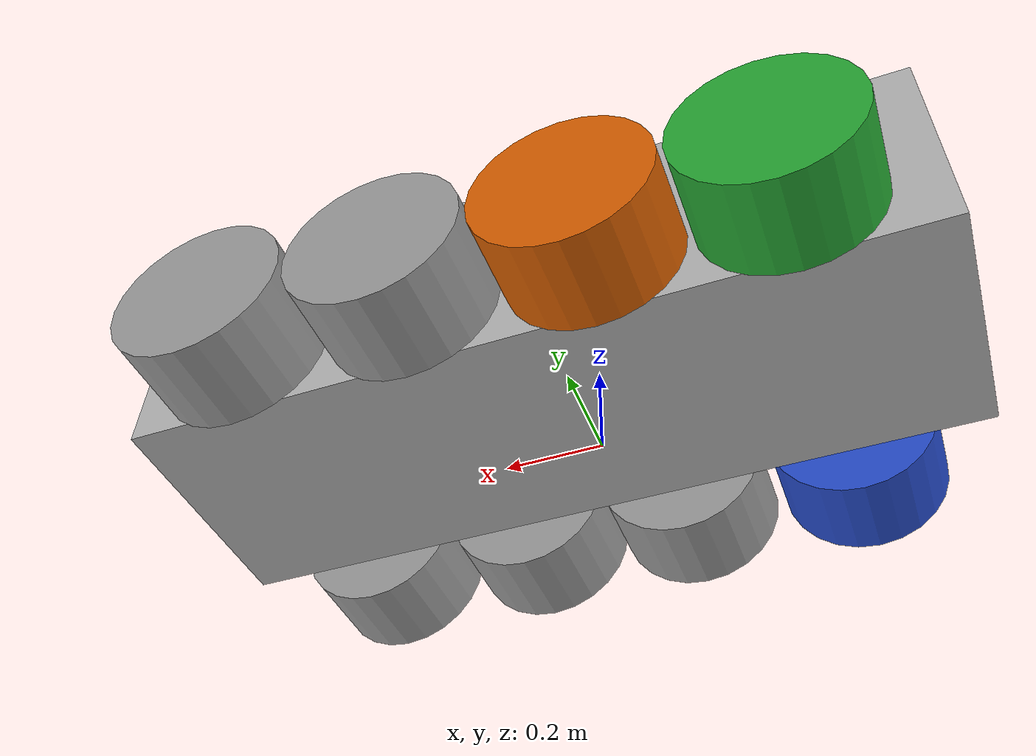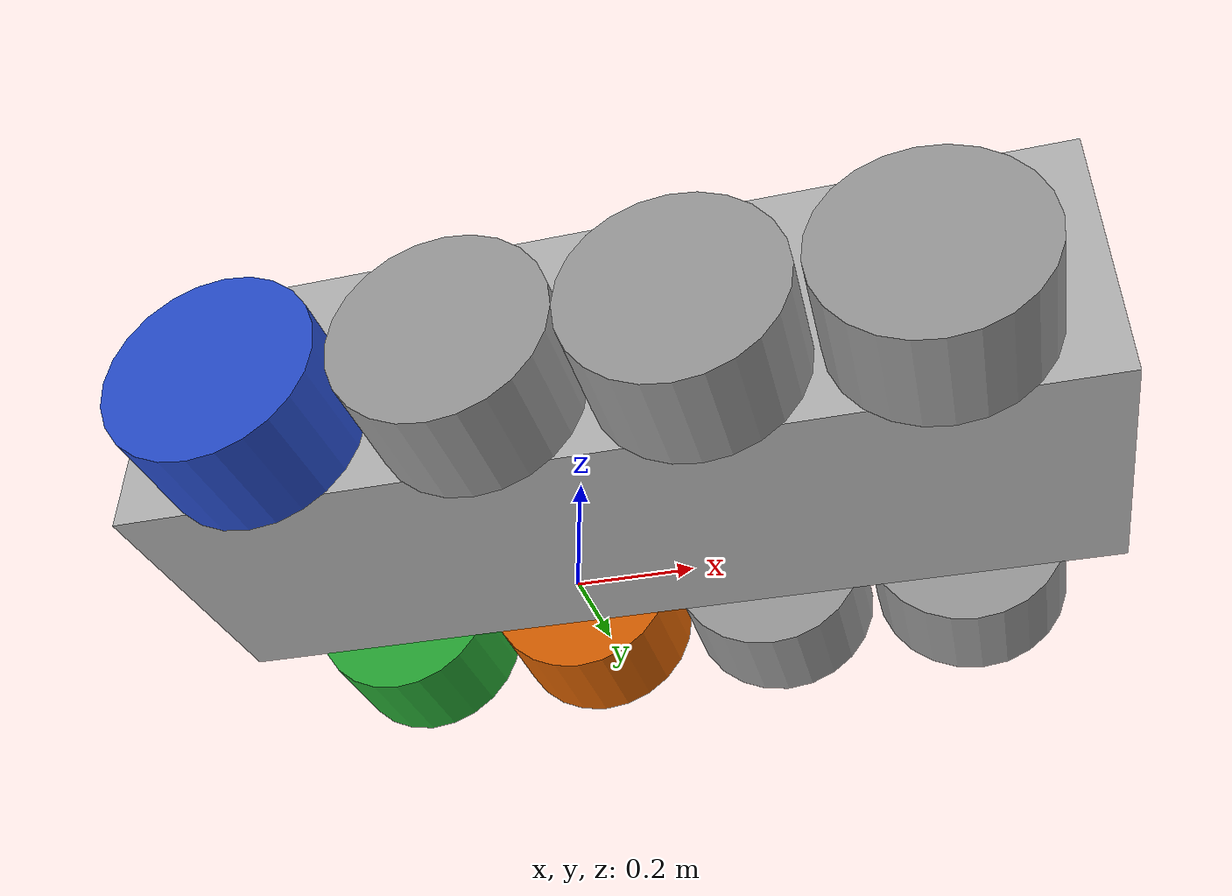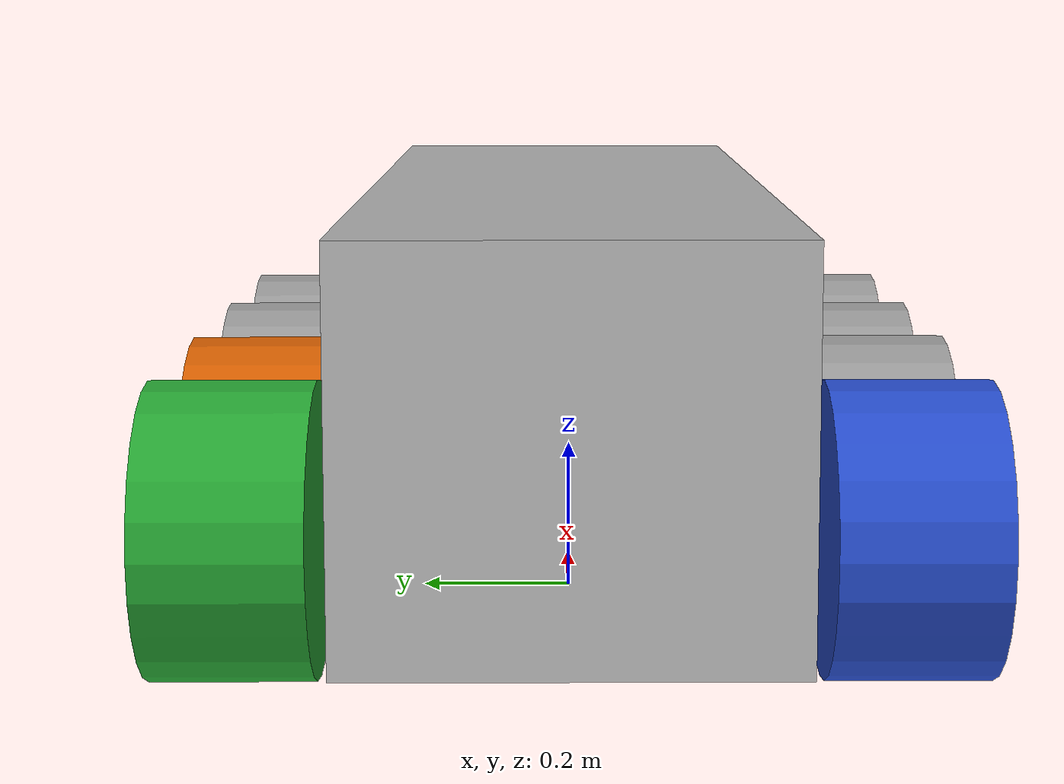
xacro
<?xml version="1.0" ?>
<robot name="testurdf" xmlns:xacro="http://ros.org/wiki/xacro">
  <xacro:include filename="$(find brokk)/description/common_properties.xacro"/>
  <xacro:include filename="$(find brokk)/description/brokk170_gazebo.xacro"/>
  <xacro:include filename="$(find brokk)/description/brokk170_control.xacro"/>

  <xacro:arg name="use_ros2_control" default="true"/>

  <xacro:property name="joint_damping" value="100"/>
  <xacro:property name="PI" value="3.1415926535897931"/>
  <xacro:property name="mass" value="1" /> <!-- arbitrary value for mass -->
  <xacro:property name="width" value="0.1" /> <!-- Square dimensions (widthxwidth) of beams -->
  <xacro:property name="height1" value="2" /> <!-- Link 1 -->
  <xacro:property name="height2" value="1" /> <!-- Link 2 -->
  <xacro:property name="height3" value="1" /> <!-- Link 3 -->

  <xacro:property name="r200_cam_rgb_px" value="0.005"/>
  <xacro:property name="r200_cam_rgb_py" value="0.018"/>
  <xacro:property name="r200_cam_rgb_pz" value="0.013"/>
  <xacro:property name="r200_cam_depth_offset" value="0.01"/>

  <xacro:property name="brokk_base_lower_limit" value="0.152"/>
  <xacro:property name="brokk_base_upper_limit" value="2.983"/>
  <xacro:property name="brokk_body1_lower_limit" value="0.2513"/>
  <xacro:property name="brokk_body1_upper_limit" value="2.2617"/>
  <xacro:property name="brokk_body2_lower_limit" value="0.076"/>
  <xacro:property name="brokk_body2_upper_limit" value="1.444"/>
  <xacro:property name="brokk_body3_lower_limit" value="0.096"/>
  <xacro:property name="brokk_body3_upper_limit" value="1.824"/>
  <xacro:property name="brokk_body4_lower_limit" value="0.128"/>
  <xacro:property name="brokk_body4_upper_limit" value="2.4367"/>
  <xacro:property name="safety_limits" value="0.15"/>
  <xacro:property name="brokk_arm_vel_limit" value="50.0"/>
  <xacro:property name="k_velocity" value="1.0"/>

  <link name="base_footprint">
  </link>

  <joint name="base_joint" type="fixed">
    <parent link="base_footprint"/>
    <child link="base_link"/>
    <origin xyz="0 0 0" rpy="0 0 0"/>
  </joint>

  <link name="base_link">
  </link>

  <!-- EINHEIT: BASE LINK / LEGS AND TRACKS __________________________________________________________________________________________________________-->

  <!--$(find brokk)/description/brokk_base_edit.stl   UND   $(find brokk)/description/brokk_base_collision.stl-->
  <!-- Für richtige Darstellungin RVIZ muss man Package:// verwenden, sonst gehen auch die eigentlich effinzienteren ausdrücke oben-->

  <!-- package://brokk/description/brokk_base_edit.stl UND package://brokk/description/brokk_base_collision.stl-->

  <joint name="base_core_joint" type="fixed">
    <parent link="base_footprint"/>
    <child link="base_core_link"/>
    <origin xyz="0 0 0.01" rpy="0 0 0"/>
  </joint>

  <link name="base_core_link">       <!--robot base??-->
    <visual>
          <origin xyz="0.0 0 0.0" rpy="0 0 0" />
          <geometry>
              <mesh filename="package://brokk/models/meshes/brokk_base_edit.stl " scale="0.011 0.01 0.01"/>
          </geometry>
          <material name="LightGrey">
              <color rgba="0.7 0.7 0.7 1.0"/>
          </material>
      </visual>

      <collision>
          <origin xyz="-0.0 0 0.047" rpy="0 0 0"/>
          <geometry>
     	       <mesh filename="package://brokk/models/meshes/brokk_base_collision.stl"/>
          </geometry>
      </collision>

      <inertial>
        <origin xyz="0 0 0" rpy="0 0 0" />
        <mass value="2.34"/>
        <inertia ixx="1.0" ixy="0.0" ixz="0.0" iyy="1.0" iyz="0.0" izz="1.0" />
      </inertial>

  </link>

  <!--EINHEIT: IMU_LINK ____________________________________________________________________________________________________________________________-->

  <link name="imu_link"/>

  <joint name="imu_joint" type="fixed">
    <parent link="base_footprint"/>
    <child link="imu_link"/>
    <origin xyz="0.0 0 0.047" rpy="0 0 0"/>
  </joint>

<!-- Einheit-->

  <joint name="wheel_left_behind_joint" type="continuous">
    <parent link="base_link"/>
    <child link="wheel_left_behind_link"/>
    <origin xyz="-0.46 0.40 0.18" rpy="0 0 0"/>
    <axis xyz="0 1 0"/>
  </joint>

  <link name="wheel_left_behind_link">
    <visual>
      <origin xyz="0.0 0.0 0.0" rpy="1.57 0 0"/>
      <geometry>
     	 <cylinder radius="0.18" length="0.20"/>
      </geometry>
      <material name="green"/>
    </visual>

    <collision>
      <origin xyz="0 0 0.0" rpy="1.57 0 0"/>
      <geometry>
        <cylinder length="0.2" radius="0.18"/>
      </geometry>
    </collision>

    <inertial>
      <origin xyz="0 0 0.0" />
      <mass value="2.8498940e-02" />
      <inertia ixx="1.1175580e-05" ixy="-4.2369783e-11" ixz="-5.9381719e-09"
               iyy="1.1192413e-05" iyz="-1.4400107e-11"
               izz="2.0712558e-05" />
      </inertial>
  </link>

	<!-- linker mittel hinten Reifen loo0o-->

  <joint name="wheel_left_mittelhinten_joint" type="continuous">
    <parent link="base_footprint"/>
    <child link="wheel_left_mittelhinten_link"/>
    <origin xyz="-0.09 0.40 0.18" rpy="0 0 0"/>
    <axis xyz="0 1 0"/>
  </joint>

  <link name="wheel_left_mittelhinten_link">
    <visual>
      <origin xyz="0.0 0.0 0.0" rpy="1.57 0 0"/>
      <geometry>
     	 <cylinder radius="0.18" length="0.20"/>
      </geometry>
      <material name="dark"/>
    </visual>

    <collision>
      <origin xyz="0.0 0 0.0" rpy="1.57 0 0"/>
      <geometry>
        <cylinder length="0.2" radius="0.18"/>
      </geometry>
    </collision>

    <inertial>
      <origin xyz="0.0 0 0.0" />
      <mass value="2.8498940e-02" />
      <inertia ixx="1.1175580e-05" ixy="-4.2369783e-11" ixz="-5.9381719e-09"
               iyy="1.1192413e-05" iyz="-1.4400107e-11"
               izz="2.0712558e-05" />
      </inertial>
  </link>

	<!-- linker mittel vorne Reifen lo0oo-->

  <joint name="wheel_left_mittelvorne_joint" type="continuous">
    <parent link="base_footprint"/>
    <child link="wheel_left_mittelvorne_link"/>
    <origin xyz="0.28 0.4 0.18" rpy="0 0 0"/>
    <axis xyz="0 1 0"/>
  </joint>

  <link name="wheel_left_mittelvorne_link">
    <visual>
      <origin xyz="0 0 0" rpy="1.57 0 0"/>
      <geometry>
     	 <cylinder radius="0.18" length="0.2"/>
      </geometry>
      <material name="dark"/>
    </visual>

    <collision>
      <origin xyz="0 0 0" rpy="1.57 0 0"/>
      <geometry>
        <cylinder length="0.2" radius="0.18"/>
      </geometry>
    </collision>

    <inertial>
      <origin xyz="0 0 0" />
      <mass value="2.8498940e-02" />
      <inertia ixx="1.1175580e-05" ixy="-4.2369783e-11" ixz="-5.9381719e-09"
               iyy="1.1192413e-05" iyz="-1.4400107e-11"
               izz="2.0712558e-05" />
      </inertial>
  </link>

	<!-- rechter mittel hinten Reifen roo0o-->

  <joint name="wheel_right_mittelhinten_joint" type="continuous">
    <parent link="base_footprint"/>
    <child link="wheel_right_mittelhinten_link"/>
    <origin xyz="-0.08 -0.4 0.18" rpy="0 0 0"/>
    <axis xyz="0 1 0"/>
  </joint>

  <link name="wheel_right_mittelhinten_link">
    <visual>
      <origin xyz="0.0 0 0.0" rpy="-1.57 0 0"/>
      <geometry>
      	<cylinder radius="0.18" length="0.2"/>
      </geometry>
      <material name="dark"/>
    </visual>

    <collision>
      <origin xyz="0.0 0 0.0" rpy="-1.57 0 0"/>
      <geometry>
      	<cylinder radius="0.18" length="0.2"/>
      </geometry>
    </collision>

    <inertial>
      <origin xyz="0.0 0 0.0" />
      <mass value="2.8498940e-02" />
      <inertia ixx="1.1175580e-05" ixy="-4.2369783e-11" ixz="-5.9381719e-09"
               iyy="1.1192413e-05" iyz="-1.4400107e-11"
               izz="2.0712558e-05" />
      </inertial>
  </link>

	<!-- rechter mittel vorne Reifen ro0oo-->

  <joint name="wheel_right_mittelvorne_joint" type="continuous">
    <parent link="base_footprint"/>
    <child link="wheel_right_mittelvorne_link"/>
    <origin xyz="0.28 -0.4 0.18" rpy="0 0 0"/>
    <axis xyz="0 1 0"/>
  </joint>

  <link name="wheel_right_mittelvorne_link">
    <visual>
      <origin xyz="0 0 0.0" rpy="-1.57 0 0"/>
      <geometry>
      	<cylinder radius="0.18" length="0.2"/>
      </geometry>
      <material name="dark"/>
    </visual>

    <collision>
      <origin xyz="0 0 0" rpy="-1.57 0 0"/>
      <geometry>
      	<cylinder radius="0.18" length="0.2"/>
      </geometry>
    </collision>

    <inertial>
      <origin xyz="0 0 0.0" />
      <mass value="2.8498940e-02" />
      <inertia ixx="1.1175580e-05" ixy="-4.2369783e-11" ixz="-5.9381719e-09"
               iyy="1.1192413e-05" iyz="-1.4400107e-11"
               izz="2.0712558e-05" />
      </inertial>
  </link>

   <!-- linker vorderer Reifen looo0-->

  <joint name="left_joint" type="continuous">
    <origin xyz="0.65 0.4 0.18" rpy="0 0 0"/>
    <parent link="base_footprint"/>
    <child link="wheel_left_link"/>
    <axis xyz="0.0 1.0 0.0"/>
    <dynamics damping="10"/>
  </joint>

  <link name="wheel_left_link">
    <visual>
      <origin xyz="0 0.0 0.0" rpy="1.57 0 0"/>
      <geometry>
      	<cylinder radius="0.18" length="0.2"/>
      </geometry>
      <material name="dark"/>
    </visual>

    <collision>
      <origin xyz="0.0 0 0.0" rpy="1.57 0 0"/>
      <geometry>
        <cylinder length="0.2" radius="0.18"/>
      </geometry>
    </collision>

    <inertial>
      <origin xyz="0 0 0.0" />
      <mass value="2.8498940e-02" />
      <inertia ixx="1.1175580e-05" ixy="-4.2369783e-11" ixz="-5.9381719e-09"
               iyy="1.1192413e-05" iyz="-1.4400107e-11"
               izz="2.0712558e-05" />
      </inertial>
  </link>

 <!-- rechter hinterer Reifen r0ooo -->

  <joint name="wheel_right_behind_joint" type="continuous">
    <parent link="base_footprint"/>
    <child link="wheel_right_behind_link"/>
    <origin xyz="-0.46 -0.4 0.18" rpy="0 0 0"/>
    <axis xyz="0 1 0"/>
    <dynamics damping="20"/>
  </joint>

  <link name="wheel_right_behind_link">
    <visual>
      <origin xyz="0 0 0" rpy="-1.57 0 0"/>
      <geometry>
      	<cylinder radius="0.18" length="0.2"/>
      </geometry>
      <material name="blue"/>
    </visual>

    <collision>
      <origin xyz="0 0 0.0" rpy="-1.57 0 0"/>
      <geometry>
      	<cylinder radius="0.18" length="0.2"/>
      </geometry>
    </collision>

    <inertial>
      <origin xyz="0 0 0.0" />
      <mass value="2.8498940e-02" />
      <inertia ixx="1.1175580e-05" ixy="-4.2369783e-11" ixz="-5.9381719e-09"
               iyy="1.1192413e-05" iyz="-1.4400107e-11"
               izz="2.0712558e-05" />
      </inertial>
  </link>

   <!-- rechter vorderer Reifen rooo0-->

  <joint name="right_joint" type="continuous">
    <origin xyz="0.65 -0.4 0.18" rpy="0 0 0"/>
    <parent link="base_footprint"/>
    <child link="wheel_right_link"/>
    <axis xyz="0.0 1.0 0.0"/>
  </joint>

  <link name="wheel_right_link">
    <visual>
      <origin xyz="0 0 0.0" rpy="-1.57 0 0"/>
      <geometry>
      	<cylinder radius="0.18" length="0.2"/>
      </geometry>
      <material name="dark"/>
    </visual>

    <collision>
      <origin xyz="0 0 0.0" rpy="-1.57 0 0"/>
      <geometry>
      	<cylinder radius="0.18" length="0.2"/>
      </geometry>
    </collision>

    <inertial>
      <origin xyz="0 0 0.0" />
      <mass value="2.8498940e-02" />
      <inertia ixx="1.1175580e-05" ixy="-4.2369783e-11" ixz="-5.9381719e-09"
               iyy="1.1192413e-05" iyz="-1.4400107e-11"
               izz="2.0712558e-05" />
      </inertial>
  </link>

</robot>
